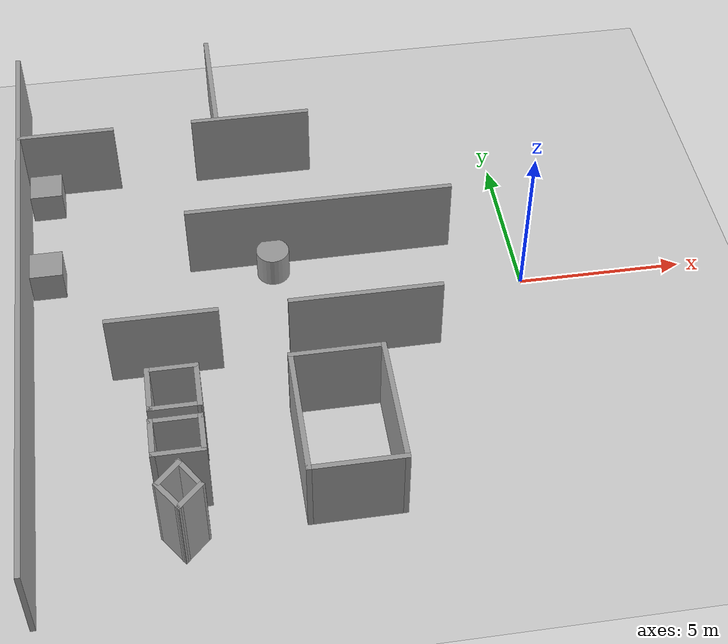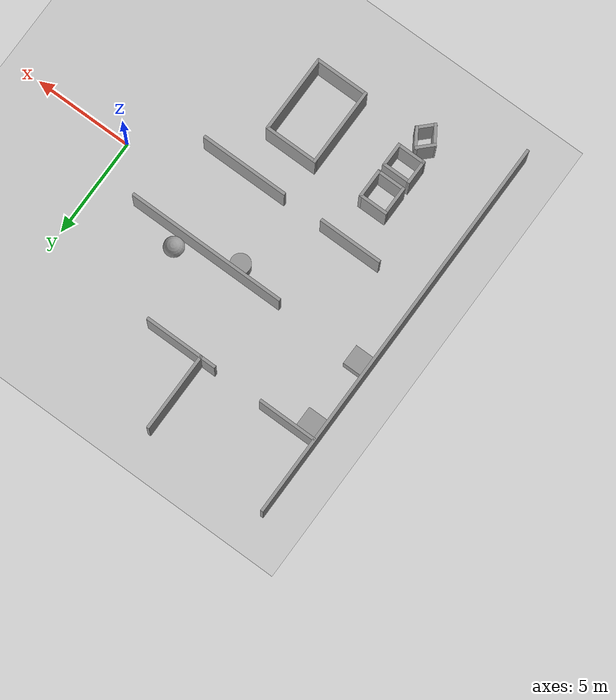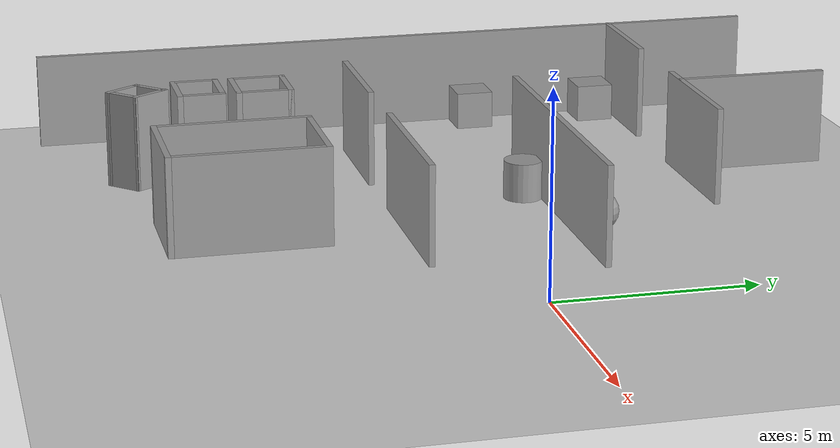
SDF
<sdf version="1.7">
 <world name="default">
  <model name="ground_plane">
   <static>1</static>
   <link name="link">
    <collision name="collision">
     <geometry><plane><normal>0 0 1</normal><size>100 100</size></plane></geometry>
     <surface>
      <contact><collide_bitmask>65535</collide_bitmask></contact>
      <friction><ode><mu>100</mu><mu2>50</mu2></ode></friction>
     </surface>
    </collision>
    <visual name="visual">
     <cast_shadows>0</cast_shadows>
     <geometry><plane><normal>0 0 1</normal><size>100 100</size></plane></geometry>
     <material>
      <script><uri>file://media/materials/scripts/gazebo.material</uri><name>Gazebo/Grey</name></script>
     </material>
    </visual>
   </link>
  </model>
  <model name="unit_box">
   <pose>-14.3506 5.42319 0.5 0 -0 0</pose>
   <link name="link">
    <inertial>
     <mass>1</mass>
     <inertia>
      <ixx>0.166667</ixx>
      <ixy>0</ixy>
      <ixz>0</ixz>
      <iyy>0.166667</iyy>
      <iyz>0</iyz>
      <izz>0.166667</izz>
     </inertia>
    </inertial>
    <collision name="collision"><geometry><box><size>1 1 1</size></box></geometry></collision>
    <visual name="visual">
     <geometry><box><size>1 1 1</size></box></geometry>
     <material>
      <script><name>Gazebo/Grey</name><uri>file://media/materials/scripts/gazebo.material</uri></script>
     </material>
    </visual>
   </link>
  </model>
  <model name="Untitled_0">
   <link name="Wall_15">
    <pose>-5.20316 -2.00426 0 0 -0 3.14159</pose>
    <visual name="Wall_15_Visual">
     <pose>0 0 1.25 0 -0 0</pose>
     <geometry><box><size>4.5 0.15 2.5</size></box></geometry>
     <material>
      <script><uri>file://media/materials/scripts/gazebo.material</uri><name>Gazebo/Grey</name></script>
      <ambient>1 1 1 1</ambient>
      <shader type="pixel"/>
     </material>
     <meta><layer>0</layer></meta>
    </visual>
    <collision name="Wall_15_Collision">
     <pose>0 0 1.25 0 -0 0</pose>
     <geometry><box><size>4.5 0.15 2.5</size></box></geometry>
     <surface>
      <friction>
       <ode><mu>1</mu><mu2>1</mu2><fdir1>0 0 0</fdir1><slip1>0</slip1><slip2>0</slip2></ode>
       <torsional>
        <coefficient>1</coefficient>
        <patch_radius>0</patch_radius>
        <surface_radius>0</surface_radius>
        <use_patch_radius>1</use_patch_radius>
        <ode><slip>0</slip></ode>
       </torsional>
      </friction>
      <bounce><restitution_coefficient>0</restitution_coefficient><threshold>1e+06</threshold></bounce>
      <contact>
       <collide_without_contact>0</collide_without_contact>
       <collide_without_contact_bitmask>1</collide_without_contact_bitmask>
       <collide_bitmask>1</collide_bitmask>
       <ode>
        <soft_cfm>0</soft_cfm>
        <soft_erp>0.2</soft_erp>
        <kp>1e+13</kp>
        <kd>1</kd>
        <max_vel>0.01</max_vel>
        <min_depth>0</min_depth>
       </ode>
       <bullet>
        <split_impulse>1</split_impulse>
        <split_impulse_penetration_threshold>-0.01</split_impulse_penetration_threshold>
        <soft_cfm>0</soft_cfm>
        <soft_erp>0.2</soft_erp>
        <kp>1e+13</kp>
        <kd>1</kd>
       </bullet>
      </contact>
     </surface>
    </collision>
   </link>
   <link name="Wall_17">
    <pose>-11.0493 -2.03491 0 0 -0 3.14159</pose>
    <visual name="Wall_17_Visual">
     <pose>0 0 1.25 0 -0 0</pose>
     <geometry><box><size>3.25 0.15 2.5</size></box></geometry>
     <material>
      <script><uri>file://media/materials/scripts/gazebo.material</uri><name>Gazebo/Grey</name></script>
      <ambient>1 1 1 1</ambient>
      <shader type="pixel"/>
     </material>
     <meta><layer>0</layer></meta>
    </visual>
    <collision name="Wall_17_Collision">
     <pose>0 0 1.25 0 -0 0</pose>
     <geometry><box><size>3.25 0.15 2.5</size></box></geometry>
     <surface>
      <friction>
       <ode><mu>1</mu><mu2>1</mu2><fdir1>0 0 0</fdir1><slip1>0</slip1><slip2>0</slip2></ode>
       <torsional>
        <coefficient>1</coefficient>
        <patch_radius>0</patch_radius>
        <surface_radius>0</surface_radius>
        <use_patch_radius>1</use_patch_radius>
        <ode><slip>0</slip></ode>
       </torsional>
      </friction>
      <bounce><restitution_coefficient>0</restitution_coefficient><threshold>1e+06</threshold></bounce>
      <contact>
       <collide_without_contact>0</collide_without_contact>
       <collide_without_contact_bitmask>1</collide_without_contact_bitmask>
       <collide_bitmask>1</collide_bitmask>
       <ode>
        <soft_cfm>0</soft_cfm>
        <soft_erp>0.2</soft_erp>
        <kp>1e+13</kp>
        <kd>1</kd>
        <max_vel>0.01</max_vel>
        <min_depth>0</min_depth>
       </ode>
       <bullet>
        <split_impulse>1</split_impulse>
        <split_impulse_penetration_threshold>-0.01</split_impulse_penetration_threshold>
        <soft_cfm>0</soft_cfm>
        <soft_erp>0.2</soft_erp>
        <kp>1e+13</kp>
        <kd>1</kd>
       </bullet>
      </contact>
     </surface>
    </collision>
   </link>
   <link name="Wall_20">
    <pose>-5.02816 -5.92927 0 0 0 -1.5708</pose>
    <visual name="Wall_20_Visual">
     <pose>0 0 1.25 0 -0 0</pose>
     <geometry><box><size>4 0.15 2.5</size></box></geometry>
     <material>
      <script><uri>file://media/materials/scripts/gazebo.material</uri><name>Gazebo/Grey</name></script>
      <ambient>1 1 1 1</ambient>
      <shader type="pixel"/>
     </material>
     <meta><layer>0</layer></meta>
    </visual>
    <collision name="Wall_20_Collision">
     <pose>0 0 1.25 0 -0 0</pose>
     <geometry><box><size>4 0.15 2.5</size></box></geometry>
     <surface>
      <friction>
       <ode><mu>1</mu><mu2>1</mu2><fdir1>0 0 0</fdir1><slip1>0</slip1><slip2>0</slip2></ode>
       <torsional>
        <coefficient>1</coefficient>
        <patch_radius>0</patch_radius>
        <surface_radius>0</surface_radius>
        <use_patch_radius>1</use_patch_radius>
        <ode><slip>0</slip></ode>
       </torsional>
      </friction>
      <bounce><restitution_coefficient>0</restitution_coefficient><threshold>1e+06</threshold></bounce>
      <contact>
       <collide_without_contact>0</collide_without_contact>
       <collide_without_contact_bitmask>1</collide_without_contact_bitmask>
       <collide_bitmask>1</collide_bitmask>
       <ode>
        <soft_cfm>0</soft_cfm>
        <soft_erp>0.2</soft_erp>
        <kp>1e+13</kp>
        <kd>1</kd>
        <max_vel>0.01</max_vel>
        <min_depth>0</min_depth>
       </ode>
       <bullet>
        <split_impulse>1</split_impulse>
        <split_impulse_penetration_threshold>-0.01</split_impulse_penetration_threshold>
        <soft_cfm>0</soft_cfm>
        <soft_erp>0.2</soft_erp>
        <kp>1e+13</kp>
        <kd>1</kd>
       </bullet>
      </contact>
     </surface>
    </collision>
   </link>
   <link name="Wall_22">
    <pose>-6.32816 -4.00426 0 0 -0 3.14159</pose>
    <visual name="Wall_22_Visual">
     <pose>0 0 1.25 0 -0 0</pose>
     <geometry><box><size>2.75 0.15 2.5</size></box></geometry>
     <material>
      <script><uri>file://media/materials/scripts/gazebo.material</uri><name>Gazebo/Grey</name></script>
      <ambient>1 1 1 1</ambient>
      <shader type="pixel"/>
     </material>
     <meta><layer>0</layer></meta>
    </visual>
    <collision name="Wall_22_Collision">
     <pose>0 0 1.25 0 -0 0</pose>
     <geometry><box><size>2.75 0.15 2.5</size></box></geometry>
     <surface>
      <friction>
       <ode><mu>1</mu><mu2>1</mu2><fdir1>0 0 0</fdir1><slip1>0</slip1><slip2>0</slip2></ode>
       <torsional>
        <coefficient>1</coefficient>
        <patch_radius>0</patch_radius>
        <surface_radius>0</surface_radius>
        <use_patch_radius>1</use_patch_radius>
        <ode><slip>0</slip></ode>
       </torsional>
      </friction>
      <bounce><restitution_coefficient>0</restitution_coefficient><threshold>1e+06</threshold></bounce>
      <contact>
       <collide_without_contact>0</collide_without_contact>
       <collide_without_contact_bitmask>1</collide_without_contact_bitmask>
       <collide_bitmask>1</collide_bitmask>
       <ode>
        <soft_cfm>0</soft_cfm>
        <soft_erp>0.2</soft_erp>
        <kp>1e+13</kp>
        <kd>1</kd>
        <max_vel>0.01</max_vel>
        <min_depth>0</min_depth>
       </ode>
       <bullet>
        <split_impulse>1</split_impulse>
        <split_impulse_penetration_threshold>-0.01</split_impulse_penetration_threshold>
        <soft_cfm>0</soft_cfm>
        <soft_erp>0.2</soft_erp>
        <kp>1e+13</kp>
        <kd>1</kd>
       </bullet>
      </contact>
     </surface>
    </collision>
   </link>
   <link name="Wall_23">
    <pose>-7.62816 -5.92927 0 0 0 -1.5708</pose>
    <visual name="Wall_23_Visual">
     <pose>0 0 1.25 0 -0 0</pose>
     <geometry><box><size>4 0.15 2.5</size></box></geometry>
     <material>
      <script><uri>file://media/materials/scripts/gazebo.material</uri><name>Gazebo/Grey</name></script>
      <ambient>1 1 1 1</ambient>
      <shader type="pixel"/>
     </material>
     <meta><layer>0</layer></meta>
    </visual>
    <collision name="Wall_23_Collision">
     <pose>0 0 1.25 0 -0 0</pose>
     <geometry><box><size>4 0.15 2.5</size></box></geometry>
     <surface>
      <friction>
       <ode><mu>1</mu><mu2>1</mu2><fdir1>0 0 0</fdir1><slip1>0</slip1><slip2>0</slip2></ode>
       <torsional>
        <coefficient>1</coefficient>
        <patch_radius>0</patch_radius>
        <surface_radius>0</surface_radius>
        <use_patch_radius>1</use_patch_radius>
        <ode><slip>0</slip></ode>
       </torsional>
      </friction>
      <bounce><restitution_coefficient>0</restitution_coefficient><threshold>1e+06</threshold></bounce>
      <contact>
       <collide_without_contact>0</collide_without_contact>
       <collide_without_contact_bitmask>1</collide_without_contact_bitmask>
       <collide_bitmask>1</collide_bitmask>
       <ode>
        <soft_cfm>0</soft_cfm>
        <soft_erp>0.2</soft_erp>
        <kp>1e+13</kp>
        <kd>1</kd>
        <max_vel>0.01</max_vel>
        <min_depth>0</min_depth>
       </ode>
       <bullet>
        <split_impulse>1</split_impulse>
        <split_impulse_penetration_threshold>-0.01</split_impulse_penetration_threshold>
        <soft_cfm>0</soft_cfm>
        <soft_erp>0.2</soft_erp>
        <kp>1e+13</kp>
        <kd>1</kd>
       </bullet>
      </contact>
     </surface>
    </collision>
   </link>
   <link name="Wall_24">
    <pose>-6.32816 -7.85426 0 0 -0 0</pose>
    <visual name="Wall_24_Visual">
     <pose>0 0 1.25 0 -0 0</pose>
     <geometry><box><size>2.75 0.15 2.5</size></box></geometry>
     <material>
      <script><uri>file://media/materials/scripts/gazebo.material</uri><name>Gazebo/Grey</name></script>
      <ambient>1 1 1 1</ambient>
      <shader type="pixel"/>
     </material>
     <meta><layer>0</layer></meta>
    </visual>
    <collision name="Wall_24_Collision">
     <pose>0 0 1.25 0 -0 0</pose>
     <geometry><box><size>2.75 0.15 2.5</size></box></geometry>
     <surface>
      <friction>
       <ode><mu>1</mu><mu2>1</mu2><fdir1>0 0 0</fdir1><slip1>0</slip1><slip2>0</slip2></ode>
       <torsional>
        <coefficient>1</coefficient>
        <patch_radius>0</patch_radius>
        <surface_radius>0</surface_radius>
        <use_patch_radius>1</use_patch_radius>
        <ode><slip>0</slip></ode>
       </torsional>
      </friction>
      <bounce><restitution_coefficient>0</restitution_coefficient><threshold>1e+06</threshold></bounce>
      <contact>
       <collide_without_contact>0</collide_without_contact>
       <collide_without_contact_bitmask>1</collide_without_contact_bitmask>
       <collide_bitmask>1</collide_bitmask>
       <ode>
        <soft_cfm>0</soft_cfm>
        <soft_erp>0.2</soft_erp>
        <kp>1e+13</kp>
        <kd>1</kd>
        <max_vel>0.01</max_vel>
        <min_depth>0</min_depth>
       </ode>
       <bullet>
        <split_impulse>1</split_impulse>
        <split_impulse_penetration_threshold>-0.01</split_impulse_penetration_threshold>
        <soft_cfm>0</soft_cfm>
        <soft_erp>0.2</soft_erp>
        <kp>1e+13</kp>
        <kd>1</kd>
       </bullet>
      </contact>
     </surface>
    </collision>
   </link>
   <link name="Wall_27">
    <pose>-10.2137 -4.65171 0 0 0 -1.5708</pose>
    <visual name="Wall_27_Visual">
     <pose>0 0 1.25 0 -0 0</pose>
     <geometry><box><size>1.5 0.15 2.5</size></box></geometry>
     <material>
      <script><uri>file://media/materials/scripts/gazebo.material</uri><name>Gazebo/Grey</name></script>
      <ambient>1 1 1 1</ambient>
      <shader type="pixel"/>
     </material>
     <meta><layer>0</layer></meta>
    </visual>
    <collision name="Wall_27_Collision">
     <pose>0 0 1.25 0 -0 0</pose>
     <geometry><box><size>1.5 0.15 2.5</size></box></geometry>
     <surface>
      <friction>
       <ode><mu>1</mu><mu2>1</mu2><fdir1>0 0 0</fdir1><slip1>0</slip1><slip2>0</slip2></ode>
       <torsional>
        <coefficient>1</coefficient>
        <patch_radius>0</patch_radius>
        <surface_radius>0</surface_radius>
        <use_patch_radius>1</use_patch_radius>
        <ode><slip>0</slip></ode>
       </torsional>
      </friction>
      <bounce><restitution_coefficient>0</restitution_coefficient><threshold>1e+06</threshold></bounce>
      <contact>
       <collide_without_contact>0</collide_without_contact>
       <collide_without_contact_bitmask>1</collide_without_contact_bitmask>
       <collide_bitmask>1</collide_bitmask>
       <ode>
        <soft_cfm>0</soft_cfm>
        <soft_erp>0.2</soft_erp>
        <kp>1e+13</kp>
        <kd>1</kd>
        <max_vel>0.01</max_vel>
        <min_depth>0</min_depth>
       </ode>
       <bullet>
        <split_impulse>1</split_impulse>
        <split_impulse_penetration_threshold>-0.01</split_impulse_penetration_threshold>
        <soft_cfm>0</soft_cfm>
        <soft_erp>0.2</soft_erp>
        <kp>1e+13</kp>
        <kd>1</kd>
       </bullet>
      </contact>
     </surface>
    </collision>
   </link>
   <link name="Wall_31">
    <pose>-10.8887 -3.97671 0 0 -0 3.14159</pose>
    <visual name="Wall_31_Visual">
     <pose>0 0 1.25 0 -0 0</pose>
     <geometry><box><size>1.5 0.15 2.5</size></box></geometry>
     <material>
      <script><uri>file://media/materials/scripts/gazebo.material</uri><name>Gazebo/Grey</name></script>
      <ambient>1 1 1 1</ambient>
      <shader type="pixel"/>
     </material>
     <meta><layer>0</layer></meta>
    </visual>
    <collision name="Wall_31_Collision">
     <pose>0 0 1.25 0 -0 0</pose>
     <geometry><box><size>1.5 0.15 2.5</size></box></geometry>
     <surface>
      <friction>
       <ode><mu>1</mu><mu2>1</mu2><fdir1>0 0 0</fdir1><slip1>0</slip1><slip2>0</slip2></ode>
       <torsional>
        <coefficient>1</coefficient>
        <patch_radius>0</patch_radius>
        <surface_radius>0</surface_radius>
        <use_patch_radius>1</use_patch_radius>
        <ode><slip>0</slip></ode>
       </torsional>
      </friction>
      <bounce><restitution_coefficient>0</restitution_coefficient><threshold>1e+06</threshold></bounce>
      <contact>
       <collide_without_contact>0</collide_without_contact>
       <collide_without_contact_bitmask>1</collide_without_contact_bitmask>
       <collide_bitmask>1</collide_bitmask>
       <ode>
        <soft_cfm>0</soft_cfm>
        <soft_erp>0.2</soft_erp>
        <kp>1e+13</kp>
        <kd>1</kd>
        <max_vel>0.01</max_vel>
        <min_depth>0</min_depth>
       </ode>
       <bullet>
        <split_impulse>1</split_impulse>
        <split_impulse_penetration_threshold>-0.01</split_impulse_penetration_threshold>
        <soft_cfm>0</soft_cfm>
        <soft_erp>0.2</soft_erp>
        <kp>1e+13</kp>
        <kd>1</kd>
       </bullet>
      </contact>
     </surface>
    </collision>
   </link>
   <link name="Wall_32">
    <pose>-11.5637 -4.65171 0 0 0 -1.5708</pose>
    <visual name="Wall_32_Visual">
     <pose>0 0 1.25 0 -0 0</pose>
     <geometry><box><size>1.5 0.15 2.5</size></box></geometry>
     <material>
      <script><uri>file://media/materials/scripts/gazebo.material</uri><name>Gazebo/Grey</name></script>
      <ambient>1 1 1 1</ambient>
      <shader type="pixel"/>
     </material>
     <meta><layer>0</layer></meta>
    </visual>
    <collision name="Wall_32_Collision">
     <pose>0 0 1.25 0 -0 0</pose>
     <geometry><box><size>1.5 0.15 2.5</size></box></geometry>
     <surface>
      <friction>
       <ode><mu>1</mu><mu2>1</mu2><fdir1>0 0 0</fdir1><slip1>0</slip1><slip2>0</slip2></ode>
       <torsional>
        <coefficient>1</coefficient>
        <patch_radius>0</patch_radius>
        <surface_radius>0</surface_radius>
        <use_patch_radius>1</use_patch_radius>
        <ode><slip>0</slip></ode>
       </torsional>
      </friction>
      <bounce><restitution_coefficient>0</restitution_coefficient><threshold>1e+06</threshold></bounce>
      <contact>
       <collide_without_contact>0</collide_without_contact>
       <collide_without_contact_bitmask>1</collide_without_contact_bitmask>
       <collide_bitmask>1</collide_bitmask>
       <ode>
        <soft_cfm>0</soft_cfm>
        <soft_erp>0.2</soft_erp>
        <kp>1e+13</kp>
        <kd>1</kd>
        <max_vel>0.01</max_vel>
        <min_depth>0</min_depth>
       </ode>
       <bullet>
        <split_impulse>1</split_impulse>
        <split_impulse_penetration_threshold>-0.01</split_impulse_penetration_threshold>
        <soft_cfm>0</soft_cfm>
        <soft_erp>0.2</soft_erp>
        <kp>1e+13</kp>
        <kd>1</kd>
       </bullet>
      </contact>
     </surface>
    </collision>
   </link>
   <link name="Wall_33">
    <pose>-10.8887 -5.32671 0 0 -0 0</pose>
    <visual name="Wall_33_Visual">
     <pose>0 0 1.25 0 -0 0</pose>
     <geometry><box><size>1.5 0.15 2.5</size></box></geometry>
     <material>
      <script><uri>file://media/materials/scripts/gazebo.material</uri><name>Gazebo/Grey</name></script>
      <ambient>1 1 1 1</ambient>
      <shader type="pixel"/>
     </material>
     <meta><layer>0</layer></meta>
    </visual>
    <collision name="Wall_33_Collision">
     <pose>0 0 1.25 0 -0 0</pose>
     <geometry><box><size>1.5 0.15 2.5</size></box></geometry>
     <surface>
      <friction>
       <ode><mu>1</mu><mu2>1</mu2><fdir1>0 0 0</fdir1><slip1>0</slip1><slip2>0</slip2></ode>
       <torsional>
        <coefficient>1</coefficient>
        <patch_radius>0</patch_radius>
        <surface_radius>0</surface_radius>
        <use_patch_radius>1</use_patch_radius>
        <ode><slip>0</slip></ode>
       </torsional>
      </friction>
      <bounce><restitution_coefficient>0</restitution_coefficient><threshold>1e+06</threshold></bounce>
      <contact>
       <collide_without_contact>0</collide_without_contact>
       <collide_without_contact_bitmask>1</collide_without_contact_bitmask>
       <collide_bitmask>1</collide_bitmask>
       <ode>
        <soft_cfm>0</soft_cfm>
        <soft_erp>0.2</soft_erp>
        <kp>1e+13</kp>
        <kd>1</kd>
        <max_vel>0.01</max_vel>
        <min_depth>0</min_depth>
       </ode>
       <bullet>
        <split_impulse>1</split_impulse>
        <split_impulse_penetration_threshold>-0.01</split_impulse_penetration_threshold>
        <soft_cfm>0</soft_cfm>
        <soft_erp>0.2</soft_erp>
        <kp>1e+13</kp>
        <kd>1</kd>
       </bullet>
      </contact>
     </surface>
    </collision>
   </link>
   <link name="Wall_35">
    <pose>-10.9034 -5.74198 0 0 -0 0</pose>
    <visual name="Wall_35_Visual">
     <pose>0 0 1.25 0 -0 0</pose>
     <geometry><box><size>1.5 0.15 2.5</size></box></geometry>
     <material>
      <script><uri>file://media/materials/scripts/gazebo.material</uri><name>Gazebo/Grey</name></script>
      <ambient>1 1 1 1</ambient>
      <shader type="pixel"/>
     </material>
     <meta><layer>0</layer></meta>
    </visual>
    <collision name="Wall_35_Collision">
     <pose>0 0 1.25 0 -0 0</pose>
     <geometry><box><size>1.5 0.15 2.5</size></box></geometry>
     <surface>
      <friction>
       <ode><mu>1</mu><mu2>1</mu2><fdir1>0 0 0</fdir1><slip1>0</slip1><slip2>0</slip2></ode>
       <torsional>
        <coefficient>1</coefficient>
        <patch_radius>0</patch_radius>
        <surface_radius>0</surface_radius>
        <use_patch_radius>1</use_patch_radius>
        <ode><slip>0</slip></ode>
       </torsional>
      </friction>
      <bounce><restitution_coefficient>0</restitution_coefficient><threshold>1e+06</threshold></bounce>
      <contact>
       <collide_without_contact>0</collide_without_contact>
       <collide_without_contact_bitmask>1</collide_without_contact_bitmask>
       <collide_bitmask>1</collide_bitmask>
       <ode>
        <soft_cfm>0</soft_cfm>
        <soft_erp>0.2</soft_erp>
        <kp>1e+13</kp>
        <kd>1</kd>
        <max_vel>0.01</max_vel>
        <min_depth>0</min_depth>
       </ode>
       <bullet>
        <split_impulse>1</split_impulse>
        <split_impulse_penetration_threshold>-0.01</split_impulse_penetration_threshold>
        <soft_cfm>0</soft_cfm>
        <soft_erp>0.2</soft_erp>
        <kp>1e+13</kp>
        <kd>1</kd>
       </bullet>
      </contact>
     </surface>
    </collision>
   </link>
   <link name="Wall_36">
    <pose>-10.2284 -6.29198 0 0 0 -1.5708</pose>
    <visual name="Wall_36_Visual">
     <pose>0 0 1.25 0 -0 0</pose>
     <geometry><box><size>1.25 0.15 2.5</size></box></geometry>
     <material>
      <script><uri>file://media/materials/scripts/gazebo.material</uri><name>Gazebo/Grey</name></script>
      <ambient>1 1 1 1</ambient>
      <shader type="pixel"/>
     </material>
     <meta><layer>0</layer></meta>
    </visual>
    <collision name="Wall_36_Collision">
     <pose>0 0 1.25 0 -0 0</pose>
     <geometry><box><size>1.25 0.15 2.5</size></box></geometry>
     <surface>
      <friction>
       <ode><mu>1</mu><mu2>1</mu2><fdir1>0 0 0</fdir1><slip1>0</slip1><slip2>0</slip2></ode>
       <torsional>
        <coefficient>1</coefficient>
        <patch_radius>0</patch_radius>
        <surface_radius>0</surface_radius>
        <use_patch_radius>1</use_patch_radius>
        <ode><slip>0</slip></ode>
       </torsional>
      </friction>
      <bounce><restitution_coefficient>0</restitution_coefficient><threshold>1e+06</threshold></bounce>
      <contact>
       <collide_without_contact>0</collide_without_contact>
       <collide_without_contact_bitmask>1</collide_without_contact_bitmask>
       <collide_bitmask>1</collide_bitmask>
       <ode>
        <soft_cfm>0</soft_cfm>
        <soft_erp>0.2</soft_erp>
        <kp>1e+13</kp>
        <kd>1</kd>
        <max_vel>0.01</max_vel>
        <min_depth>0</min_depth>
       </ode>
       <bullet>
        <split_impulse>1</split_impulse>
        <split_impulse_penetration_threshold>-0.01</split_impulse_penetration_threshold>
        <soft_cfm>0</soft_cfm>
        <soft_erp>0.2</soft_erp>
        <kp>1e+13</kp>
        <kd>1</kd>
       </bullet>
      </contact>
     </surface>
    </collision>
   </link>
   <link name="Wall_37">
    <pose>-10.9034 -6.84198 0 0 -0 3.14159</pose>
    <visual name="Wall_37_Visual">
     <pose>0 0 1.25 0 -0 0</pose>
     <geometry><box><size>1.5 0.15 2.5</size></box></geometry>
     <material>
      <script><uri>file://media/materials/scripts/gazebo.material</uri><name>Gazebo/Grey</name></script>
      <ambient>1 1 1 1</ambient>
      <shader type="pixel"/>
     </material>
     <meta><layer>0</layer></meta>
    </visual>
    <collision name="Wall_37_Collision">
     <pose>0 0 1.25 0 -0 0</pose>
     <geometry><box><size>1.5 0.15 2.5</size></box></geometry>
     <surface>
      <friction>
       <ode><mu>1</mu><mu2>1</mu2><fdir1>0 0 0</fdir1><slip1>0</slip1><slip2>0</slip2></ode>
       <torsional>
        <coefficient>1</coefficient>
        <patch_radius>0</patch_radius>
        <surface_radius>0</surface_radius>
        <use_patch_radius>1</use_patch_radius>
        <ode><slip>0</slip></ode>
       </torsional>
      </friction>
      <bounce><restitution_coefficient>0</restitution_coefficient><threshold>1e+06</threshold></bounce>
      <contact>
       <collide_without_contact>0</collide_without_contact>
       <collide_without_contact_bitmask>1</collide_without_contact_bitmask>
       <collide_bitmask>1</collide_bitmask>
       <ode>
        <soft_cfm>0</soft_cfm>
        <soft_erp>0.2</soft_erp>
        <kp>1e+13</kp>
        <kd>1</kd>
        <max_vel>0.01</max_vel>
        <min_depth>0</min_depth>
       </ode>
       <bullet>
        <split_impulse>1</split_impulse>
        <split_impulse_penetration_threshold>-0.01</split_impulse_penetration_threshold>
        <soft_cfm>0</soft_cfm>
        <soft_erp>0.2</soft_erp>
        <kp>1e+13</kp>
        <kd>1</kd>
       </bullet>
      </contact>
     </surface>
    </collision>
   </link>
   <link name="Wall_38">
    <pose>-11.5784 -6.29198 0 0 -0 1.5708</pose>
    <visual name="Wall_38_Visual">
     <pose>0 0 1.25 0 -0 0</pose>
     <geometry><box><size>1.25 0.15 2.5</size></box></geometry>
     <material>
      <script><uri>file://media/materials/scripts/gazebo.material</uri><name>Gazebo/Grey</name></script>
      <ambient>1 1 1 1</ambient>
      <shader type="pixel"/>
     </material>
     <meta><layer>0</layer></meta>
    </visual>
    <collision name="Wall_38_Collision">
     <pose>0 0 1.25 0 -0 0</pose>
     <geometry><box><size>1.25 0.15 2.5</size></box></geometry>
     <surface>
      <friction>
       <ode><mu>1</mu><mu2>1</mu2><fdir1>0 0 0</fdir1><slip1>0</slip1><slip2>0</slip2></ode>
       <torsional>
        <coefficient>1</coefficient>
        <patch_radius>0</patch_radius>
        <surface_radius>0</surface_radius>
        <use_patch_radius>1</use_patch_radius>
        <ode><slip>0</slip></ode>
       </torsional>
      </friction>
      <bounce><restitution_coefficient>0</restitution_coefficient><threshold>1e+06</threshold></bounce>
      <contact>
       <collide_without_contact>0</collide_without_contact>
       <collide_without_contact_bitmask>1</collide_without_contact_bitmask>
       <collide_bitmask>1</collide_bitmask>
       <ode>
        <soft_cfm>0</soft_cfm>
        <soft_erp>0.2</soft_erp>
        <kp>1e+13</kp>
        <kd>1</kd>
        <max_vel>0.01</max_vel>
        <min_depth>0</min_depth>
       </ode>
       <bullet>
        <split_impulse>1</split_impulse>
        <split_impulse_penetration_threshold>-0.01</split_impulse_penetration_threshold>
        <soft_cfm>0</soft_cfm>
        <soft_erp>0.2</soft_erp>
        <kp>1e+13</kp>
        <kd>1</kd>
       </bullet>
      </contact>
     </surface>
    </collision>
   </link>
   <link name="Wall_40">
    <pose>-11.2238 -7.49541 0 0 0 -2.35619</pose>
    <visual name="Wall_40_Visual">
     <pose>0 0 1.25 0 -0 0</pose>
     <geometry><box><size>1 0.15 2.5</size></box></geometry>
     <material>
      <script><uri>file://media/materials/scripts/gazebo.material</uri><name>Gazebo/Grey</name></script>
      <ambient>1 1 1 1</ambient>
      <shader type="pixel"/>
     </material>
     <meta><layer>0</layer></meta>
    </visual>
    <collision name="Wall_40_Collision">
     <pose>0 0 1.25 0 -0 0</pose>
     <geometry><box><size>1 0.15 2.5</size></box></geometry>
     <surface>
      <friction>
       <ode><mu>1</mu><mu2>1</mu2><fdir1>0 0 0</fdir1><slip1>0</slip1><slip2>0</slip2></ode>
       <torsional>
        <coefficient>1</coefficient>
        <patch_radius>0</patch_radius>
        <surface_radius>0</surface_radius>
        <use_patch_radius>1</use_patch_radius>
        <ode><slip>0</slip></ode>
       </torsional>
      </friction>
      <bounce><restitution_coefficient>0</restitution_coefficient><threshold>1e+06</threshold></bounce>
      <contact>
       <collide_without_contact>0</collide_without_contact>
       <collide_without_contact_bitmask>1</collide_without_contact_bitmask>
       <collide_bitmask>1</collide_bitmask>
       <ode>
        <soft_cfm>0</soft_cfm>
        <soft_erp>0.2</soft_erp>
        <kp>1e+13</kp>
        <kd>1</kd>
        <max_vel>0.01</max_vel>
        <min_depth>0</min_depth>
       </ode>
       <bullet>
        <split_impulse>1</split_impulse>
        <split_impulse_penetration_threshold>-0.01</split_impulse_penetration_threshold>
        <soft_cfm>0</soft_cfm>
        <soft_erp>0.2</soft_erp>
        <kp>1e+13</kp>
        <kd>1</kd>
       </bullet>
      </contact>
     </surface>
    </collision>
   </link>
   <link name="Wall_41">
    <pose>-11.2652 -8.17946 0 0 0 -0.97662</pose>
    <visual name="Wall_41_Visual">
     <pose>0 0 1.25 0 -0 0</pose>
     <geometry><box><size>1.07571 0.15 2.5</size></box></geometry>
     <material>
      <script><uri>file://media/materials/scripts/gazebo.material</uri><name>Gazebo/Grey</name></script>
      <ambient>1 1 1 1</ambient>
      <shader type="pixel"/>
     </material>
     <meta><layer>0</layer></meta>
    </visual>
    <collision name="Wall_41_Collision">
     <pose>0 0 1.25 0 -0 0</pose>
     <geometry><box><size>1.07571 0.15 2.5</size></box></geometry>
     <surface>
      <friction>
       <ode><mu>1</mu><mu2>1</mu2><fdir1>0 0 0</fdir1><slip1>0</slip1><slip2>0</slip2></ode>
       <torsional>
        <coefficient>1</coefficient>
        <patch_radius>0</patch_radius>
        <surface_radius>0</surface_radius>
        <use_patch_radius>1</use_patch_radius>
        <ode><slip>0</slip></ode>
       </torsional>
      </friction>
      <bounce><restitution_coefficient>0</restitution_coefficient><threshold>1e+06</threshold></bounce>
      <contact>
       <collide_without_contact>0</collide_without_contact>
       <collide_without_contact_bitmask>1</collide_without_contact_bitmask>
       <collide_bitmask>1</collide_bitmask>
       <ode>
        <soft_cfm>0</soft_cfm>
        <soft_erp>0.2</soft_erp>
        <kp>1e+13</kp>
        <kd>1</kd>
        <max_vel>0.01</max_vel>
        <min_depth>0</min_depth>
       </ode>
       <bullet>
        <split_impulse>1</split_impulse>
        <split_impulse_penetration_threshold>-0.01</split_impulse_penetration_threshold>
        <soft_cfm>0</soft_cfm>
        <soft_erp>0.2</soft_erp>
        <kp>1e+13</kp>
        <kd>1</kd>
       </bullet>
      </contact>
     </surface>
    </collision>
   </link>
   <link name="Wall_44">
    <pose>-10.7056 -8.26246 0 0 -0 0.785398</pose>
    <visual name="Wall_44_Visual">
     <pose>0 0 1.25 0 -0 0</pose>
     <geometry><box><size>1 0.15 2.5</size></box></geometry>
     <material>
      <script><uri>file://media/materials/scripts/gazebo.material</uri><name>Gazebo/Grey</name></script>
      <ambient>1 1 1 1</ambient>
      <shader type="pixel"/>
     </material>
     <meta><layer>0</layer></meta>
    </visual>
    <collision name="Wall_44_Collision">
     <pose>0 0 1.25 0 -0 0</pose>
     <geometry><box><size>1 0.15 2.5</size></box></geometry>
     <surface>
      <friction>
       <ode><mu>1</mu><mu2>1</mu2><fdir1>0 0 0</fdir1><slip1>0</slip1><slip2>0</slip2></ode>
       <torsional>
        <coefficient>1</coefficient>
        <patch_radius>0</patch_radius>
        <surface_radius>0</surface_radius>
        <use_patch_radius>1</use_patch_radius>
        <ode><slip>0</slip></ode>
       </torsional>
      </friction>
      <bounce><restitution_coefficient>0</restitution_coefficient><threshold>1e+06</threshold></bounce>
      <contact>
       <collide_without_contact>0</collide_without_contact>
       <collide_without_contact_bitmask>1</collide_without_contact_bitmask>
       <collide_bitmask>1</collide_bitmask>
       <ode>
        <soft_cfm>0</soft_cfm>
        <soft_erp>0.2</soft_erp>
        <kp>1e+13</kp>
        <kd>1</kd>
        <max_vel>0.01</max_vel>
        <min_depth>0</min_depth>
       </ode>
       <bullet>
        <split_impulse>1</split_impulse>
        <split_impulse_penetration_threshold>-0.01</split_impulse_penetration_threshold>
        <soft_cfm>0</soft_cfm>
        <soft_erp>0.2</soft_erp>
        <kp>1e+13</kp>
        <kd>1</kd>
       </bullet>
      </contact>
     </surface>
    </collision>
   </link>
   <link name="Wall_45">
    <pose>-10.6642 -7.5588 0 0 -0 2.14206</pose>
    <visual name="Wall_45_Visual">
     <pose>0 0 1.25 0 -0 0</pose>
     <geometry><box><size>1.10847 0.15 2.5</size></box></geometry>
     <material>
      <script><uri>file://media/materials/scripts/gazebo.material</uri><name>Gazebo/Grey</name></script>
      <ambient>1 1 1 1</ambient>
      <shader type="pixel"/>
     </material>
     <meta><layer>0</layer></meta>
    </visual>
    <collision name="Wall_45_Collision">
     <pose>0 0 1.25 0 -0 0</pose>
     <geometry><box><size>1.10847 0.15 2.5</size></box></geometry>
     <surface>
      <friction>
       <ode><mu>1</mu><mu2>1</mu2><fdir1>0 0 0</fdir1><slip1>0</slip1><slip2>0</slip2></ode>
       <torsional>
        <coefficient>1</coefficient>
        <patch_radius>0</patch_radius>
        <surface_radius>0</surface_radius>
        <use_patch_radius>1</use_patch_radius>
        <ode><slip>0</slip></ode>
       </torsional>
      </friction>
      <bounce><restitution_coefficient>0</restitution_coefficient><threshold>1e+06</threshold></bounce>
      <contact>
       <collide_without_contact>0</collide_without_contact>
       <collide_without_contact_bitmask>1</collide_without_contact_bitmask>
       <collide_bitmask>1</collide_bitmask>
       <ode>
        <soft_cfm>0</soft_cfm>
        <soft_erp>0.2</soft_erp>
        <kp>1e+13</kp>
        <kd>1</kd>
        <max_vel>0.01</max_vel>
        <min_depth>0</min_depth>
       </ode>
       <bullet>
        <split_impulse>1</split_impulse>
        <split_impulse_penetration_threshold>-0.01</split_impulse_penetration_threshold>
        <soft_cfm>0</soft_cfm>
        <soft_erp>0.2</soft_erp>
        <kp>1e+13</kp>
        <kd>1</kd>
       </bullet>
      </contact>
     </surface>
    </collision>
   </link>
   <link name="Wall_51">
    <pose>-7.7019 6.12765 0 0 -0 3.14159</pose>
    <visual name="Wall_51_Visual">
     <pose>0 0 1.25 0 -0 0</pose>
     <geometry><box><size>3.75 0.15 2.5</size></box></geometry>
     <material>
      <script><uri>file://media/materials/scripts/gazebo.material</uri><name>Gazebo/Grey</name></script>
      <ambient>1 1 1 1</ambient>
      <shader type="pixel"/>
     </material>
     <meta><layer>0</layer></meta>
    </visual>
    <collision name="Wall_51_Collision">
     <pose>0 0 1.25 0 -0 0</pose>
     <geometry><box><size>3.75 0.15 2.5</size></box></geometry>
     <surface>
      <friction>
       <ode><mu>1</mu><mu2>1</mu2><fdir1>0 0 0</fdir1><slip1>0</slip1><slip2>0</slip2></ode>
       <torsional>
        <coefficient>1</coefficient>
        <patch_radius>0</patch_radius>
        <surface_radius>0</surface_radius>
        <use_patch_radius>1</use_patch_radius>
        <ode><slip>0</slip></ode>
       </torsional>
      </friction>
      <bounce><restitution_coefficient>0</restitution_coefficient><threshold>1e+06</threshold></bounce>
      <contact>
       <collide_without_contact>0</collide_without_contact>
       <collide_without_contact_bitmask>1</collide_without_contact_bitmask>
       <collide_bitmask>1</collide_bitmask>
       <ode>
        <soft_cfm>0</soft_cfm>
        <soft_erp>0.2</soft_erp>
        <kp>1e+13</kp>
        <kd>1</kd>
        <max_vel>0.01</max_vel>
        <min_depth>0</min_depth>
       </ode>
       <bullet>
        <split_impulse>1</split_impulse>
        <split_impulse_penetration_threshold>-0.01</split_impulse_penetration_threshold>
        <soft_cfm>0</soft_cfm>
        <soft_erp>0.2</soft_erp>
        <kp>1e+13</kp>
        <kd>1</kd>
       </bullet>
      </contact>
     </surface>
    </collision>
   </link>
   <link name="Wall_53">
    <pose>-13.5393 6.13431 0 0 -0 0</pose>
    <visual name="Wall_53_Visual">
     <pose>0 0 1.25 0 -0 0</pose>
     <geometry><box><size>3 0.15 2.5</size></box></geometry>
     <material>
      <script><uri>file://media/materials/scripts/gazebo.material</uri><name>Gazebo/Grey</name></script>
      <ambient>1 1 1 1</ambient>
      <shader type="pixel"/>
     </material>
     <meta><layer>0</layer></meta>
    </visual>
    <collision name="Wall_53_Collision">
     <pose>0 0 1.25 0 -0 0</pose>
     <geometry><box><size>3 0.15 2.5</size></box></geometry>
     <surface>
      <friction>
       <ode><mu>1</mu><mu2>1</mu2><fdir1>0 0 0</fdir1><slip1>0</slip1><slip2>0</slip2></ode>
       <torsional>
        <coefficient>1</coefficient>
        <patch_radius>0</patch_radius>
        <surface_radius>0</surface_radius>
        <use_patch_radius>1</use_patch_radius>
        <ode><slip>0</slip></ode>
       </torsional>
      </friction>
      <bounce><restitution_coefficient>0</restitution_coefficient><threshold>1e+06</threshold></bounce>
      <contact>
       <collide_without_contact>0</collide_without_contact>
       <collide_without_contact_bitmask>1</collide_without_contact_bitmask>
       <collide_bitmask>1</collide_bitmask>
       <ode>
        <soft_cfm>0</soft_cfm>
        <soft_erp>0.2</soft_erp>
        <kp>1e+13</kp>
        <kd>1</kd>
        <max_vel>0.01</max_vel>
        <min_depth>0</min_depth>
       </ode>
       <bullet>
        <split_impulse>1</split_impulse>
        <split_impulse_penetration_threshold>-0.01</split_impulse_penetration_threshold>
        <soft_cfm>0</soft_cfm>
        <soft_erp>0.2</soft_erp>
        <kp>1e+13</kp>
        <kd>1</kd>
       </bullet>
      </contact>
     </surface>
    </collision>
   </link>
   <link name="Wall_57">
    <pose>-8.77976 8.07926 0 0 -0 1.5708</pose>
    <visual name="Wall_57_Visual">
     <pose>0 0 1.25 0 -0 0</pose>
     <geometry><box><size>4 0.15 2.5</size></box></geometry>
     <material>
      <script><uri>file://media/materials/scripts/gazebo.material</uri><name>Gazebo/Grey</name></script>
      <ambient>1 1 1 1</ambient>
      <shader type="pixel"/>
     </material>
     <meta><layer>0</layer></meta>
    </visual>
    <collision name="Wall_57_Collision">
     <pose>0 0 1.25 0 -0 0</pose>
     <geometry><box><size>4 0.15 2.5</size></box></geometry>
     <surface>
      <friction>
       <ode><mu>1</mu><mu2>1</mu2><fdir1>0 0 0</fdir1><slip1>0</slip1><slip2>0</slip2></ode>
       <torsional>
        <coefficient>1</coefficient>
        <patch_radius>0</patch_radius>
        <surface_radius>0</surface_radius>
        <use_patch_radius>1</use_patch_radius>
        <ode><slip>0</slip></ode>
       </torsional>
      </friction>
      <bounce><restitution_coefficient>0</restitution_coefficient><threshold>1e+06</threshold></bounce>
      <contact>
       <collide_without_contact>0</collide_without_contact>
       <collide_without_contact_bitmask>1</collide_without_contact_bitmask>
       <collide_bitmask>1</collide_bitmask>
       <ode>
        <soft_cfm>0</soft_cfm>
        <soft_erp>0.2</soft_erp>
        <kp>1e+13</kp>
        <kd>1</kd>
        <max_vel>0.01</max_vel>
        <min_depth>0</min_depth>
       </ode>
       <bullet>
        <split_impulse>1</split_impulse>
        <split_impulse_penetration_threshold>-0.01</split_impulse_penetration_threshold>
        <soft_cfm>0</soft_cfm>
        <soft_erp>0.2</soft_erp>
        <kp>1e+13</kp>
        <kd>1</kd>
       </bullet>
      </contact>
     </surface>
    </collision>
   </link>
   <link name="Wall_61">
    <pose>-6.02816 1.99574 0 0 -0 3.14159</pose>
    <visual name="Wall_61_Visual">
     <pose>0 0 1.25 0 -0 0</pose>
     <geometry><box><size>8.15 0.15 2.5</size></box></geometry>
     <material>
      <script><uri>file://media/materials/scripts/gazebo.material</uri><name>Gazebo/Grey</name></script>
      <ambient>1 1 1 1</ambient>
      <shader type="pixel"/>
     </material>
     <meta><layer>0</layer></meta>
    </visual>
    <collision name="Wall_61_Collision">
     <pose>0 0 1.25 0 -0 0</pose>
     <geometry><box><size>8.15 0.15 2.5</size></box></geometry>
     <surface>
      <friction>
       <ode><mu>1</mu><mu2>1</mu2><fdir1>0 0 0</fdir1><slip1>0</slip1><slip2>0</slip2></ode>
       <torsional>
        <coefficient>1</coefficient>
        <patch_radius>0</patch_radius>
        <surface_radius>0</surface_radius>
        <use_patch_radius>1</use_patch_radius>
        <ode><slip>0</slip></ode>
       </torsional>
      </friction>
      <bounce><restitution_coefficient>0</restitution_coefficient><threshold>1e+06</threshold></bounce>
      <contact>
       <collide_without_contact>0</collide_without_contact>
       <collide_without_contact_bitmask>1</collide_without_contact_bitmask>
       <collide_bitmask>1</collide_bitmask>
       <ode>
        <soft_cfm>0</soft_cfm>
        <soft_erp>0.2</soft_erp>
        <kp>1e+13</kp>
        <kd>1</kd>
        <max_vel>0.01</max_vel>
        <min_depth>0</min_depth>
       </ode>
       <bullet>
        <split_impulse>1</split_impulse>
        <split_impulse_penetration_threshold>-0.01</split_impulse_penetration_threshold>
        <soft_cfm>0</soft_cfm>
        <soft_erp>0.2</soft_erp>
        <kp>1e+13</kp>
        <kd>1</kd>
       </bullet>
      </contact>
     </surface>
    </collision>
   </link>
   <link name="Wall_9">
    <pose>-15.0282 -0.004264 0 0 0 -1.5708</pose>
    <visual name="Wall_9_Visual">
     <pose>0 0 1.25 0 -0 0</pose>
     <geometry><box><size>20.15 0.15 2.5</size></box></geometry>
     <material>
      <script><uri>file://media/materials/scripts/gazebo.material</uri><name>Gazebo/Grey</name></script>
      <ambient>1 1 1 1</ambient>
      <shader type="pixel"/>
     </material>
     <meta><layer>0</layer></meta>
    </visual>
    <collision name="Wall_9_Collision">
     <pose>0 0 1.25 0 -0 0</pose>
     <geometry><box><size>20.15 0.15 2.5</size></box></geometry>
     <surface>
      <friction>
       <ode><mu>1</mu><mu2>1</mu2><fdir1>0 0 0</fdir1><slip1>0</slip1><slip2>0</slip2></ode>
       <torsional>
        <coefficient>1</coefficient>
        <patch_radius>0</patch_radius>
        <surface_radius>0</surface_radius>
        <use_patch_radius>1</use_patch_radius>
        <ode><slip>0</slip></ode>
       </torsional>
      </friction>
      <bounce><restitution_coefficient>0</restitution_coefficient><threshold>1e+06</threshold></bounce>
      <contact>
       <collide_without_contact>0</collide_without_contact>
       <collide_without_contact_bitmask>1</collide_without_contact_bitmask>
       <collide_bitmask>1</collide_bitmask>
       <ode>
        <soft_cfm>0</soft_cfm>
        <soft_erp>0.2</soft_erp>
        <kp>1e+13</kp>
        <kd>1</kd>
        <max_vel>0.01</max_vel>
        <min_depth>0</min_depth>
       </ode>
       <bullet>
        <split_impulse>1</split_impulse>
        <split_impulse_penetration_threshold>-0.01</split_impulse_penetration_threshold>
        <soft_cfm>0</soft_cfm>
        <soft_erp>0.2</soft_erp>
        <kp>1e+13</kp>
        <kd>1</kd>
       </bullet>
      </contact>
     </surface>
    </collision>
   </link>
   <link name="link_0">
    <inertial>
     <mass>1</mass>
     <inertia><ixx>0.145833</ixx><ixy>0</ixy><ixz>0</ixz><iyy>0.145833</iyy><iyz>0</iyz><izz>0.125</izz></inertia>
    </inertial>
    <pose>-7.55057 1.50643 0.5 0 -0 0</pose>
    <visual name="visual">
     <geometry><cylinder><radius>0.5</radius><length>1</length></cylinder></geometry>
     <material>
      <lighting>1</lighting>
      <script><uri>file://media/materials/scripts/gazebo.material</uri><name>Gazebo/Grey</name></script>
      <shader type="pixel"/>
     </material>
    </visual>
    <collision name="collision">
     <geometry><cylinder><radius>0.5</radius><length>1</length></cylinder></geometry>
     <surface>
      <friction>
       <ode><mu>1</mu><mu2>1</mu2><fdir1>0 0 0</fdir1><slip1>0</slip1><slip2>0</slip2></ode>
       <torsional>
        <coefficient>1</coefficient>
        <patch_radius>0</patch_radius>
        <surface_radius>0</surface_radius>
        <use_patch_radius>1</use_patch_radius>
        <ode><slip>0</slip></ode>
       </torsional>
      </friction>
      <bounce><restitution_coefficient>0</restitution_coefficient><threshold>1e+06</threshold></bounce>
      <contact>
       <collide_without_contact>0</collide_without_contact>
       <collide_without_contact_bitmask>1</collide_without_contact_bitmask>
       <collide_bitmask>1</collide_bitmask>
       <ode>
        <soft_cfm>0</soft_cfm>
        <soft_erp>0.2</soft_erp>
        <kp>1e+13</kp>
        <kd>1</kd>
        <max_vel>0.01</max_vel>
        <min_depth>0</min_depth>
       </ode>
       <bullet>
        <split_impulse>1</split_impulse>
        <split_impulse_penetration_threshold>-0.01</split_impulse_penetration_threshold>
        <soft_cfm>0</soft_cfm>
        <soft_erp>0.2</soft_erp>
        <kp>1e+13</kp>
        <kd>1</kd>
       </bullet>
      </contact>
     </surface>
    </collision>
   </link>
   <link name="link_7">
    <inertial>
     <mass>1</mass>
     <inertia>
      <ixx>0.166667</ixx>
      <ixy>0</ixy>
      <ixz>0</ixz>
      <iyy>0.166667</iyy>
      <iyz>0</iyz>
      <izz>0.166667</izz>
     </inertia>
    </inertial>
    <pose>-14.4263 1.92099 0.5 0 -0 0</pose>
    <visual name="visual">
     <geometry><box><size>1 1 1</size></box></geometry>
     <material>
      <lighting>1</lighting>
      <script><uri>file://media/materials/scripts/gazebo.material</uri><name>Gazebo/Grey</name></script>
      <shader type="pixel"/>
     </material>
    </visual>
    <collision name="collision">
     <geometry><box><size>1 1 1</size></box></geometry>
     <surface>
      <friction>
       <ode><mu>1</mu><mu2>1</mu2><fdir1>0 0 0</fdir1><slip1>0</slip1><slip2>0</slip2></ode>
       <torsional>
        <coefficient>1</coefficient>
        <patch_radius>0</patch_radius>
        <surface_radius>0</surface_radius>
        <use_patch_radius>1</use_patch_radius>
        <ode><slip>0</slip></ode>
       </torsional>
      </friction>
      <bounce><restitution_coefficient>0</restitution_coefficient><threshold>1e+06</threshold></bounce>
      <contact>
       <collide_without_contact>0</collide_without_contact>
       <collide_without_contact_bitmask>1</collide_without_contact_bitmask>
       <collide_bitmask>1</collide_bitmask>
       <ode>
        <soft_cfm>0</soft_cfm>
        <soft_erp>0.2</soft_erp>
        <kp>1e+13</kp>
        <kd>1</kd>
        <max_vel>0.01</max_vel>
        <min_depth>0</min_depth>
       </ode>
       <bullet>
        <split_impulse>1</split_impulse>
        <split_impulse_penetration_threshold>-0.01</split_impulse_penetration_threshold>
        <soft_cfm>0</soft_cfm>
        <soft_erp>0.2</soft_erp>
        <kp>1e+13</kp>
        <kd>1</kd>
       </bullet>
      </contact>
     </surface>
    </collision>
   </link>
   <link name="link_8">
    <inertial>
     <mass>1</mass>
     <inertia><ixx>0.1</ixx><ixy>0</ixy><ixz>0</ixz><iyy>0.1</iyy><iyz>0</iyz><izz>0.1</izz></inertia>
    </inertial>
    <pose>-4.60727 2.58893 0.5 0 -0 0</pose>
    <visual name="visual">
     <geometry><sphere><radius>0.5</radius></sphere></geometry>
     <material>
      <lighting>1</lighting>
      <script><uri>file://media/materials/scripts/gazebo.material</uri><name>Gazebo/Grey</name></script>
      <shader type="pixel"/>
     </material>
    </visual>
    <collision name="collision">
     <geometry><sphere><radius>0.5</radius></sphere></geometry>
     <surface>
      <friction>
       <ode><mu>1</mu><mu2>1</mu2><fdir1>0 0 0</fdir1><slip1>0</slip1><slip2>0</slip2></ode>
       <torsional>
        <coefficient>1</coefficient>
        <patch_radius>0</patch_radius>
        <surface_radius>0</surface_radius>
        <use_patch_radius>1</use_patch_radius>
        <ode><slip>0</slip></ode>
       </torsional>
      </friction>
      <bounce><restitution_coefficient>0</restitution_coefficient><threshold>1e+06</threshold></bounce>
      <contact>
       <collide_without_contact>0</collide_without_contact>
       <collide_without_contact_bitmask>1</collide_without_contact_bitmask>
       <collide_bitmask>1</collide_bitmask>
       <ode>
        <soft_cfm>0</soft_cfm>
        <soft_erp>0.2</soft_erp>
        <kp>1e+13</kp>
        <kd>1</kd>
        <max_vel>0.01</max_vel>
        <min_depth>0</min_depth>
       </ode>
       <bullet>
        <split_impulse>1</split_impulse>
        <split_impulse_penetration_threshold>-0.01</split_impulse_penetration_threshold>
        <soft_cfm>0</soft_cfm>
        <soft_erp>0.2</soft_erp>
        <kp>1e+13</kp>
        <kd>1</kd>
       </bullet>
      </contact>
     </surface>
    </collision>
   </link>
   <static>1</static>
   <pose>0.028156 0.004264 0 0 -0 0</pose>
  </model>
 </world>
</sdf>
